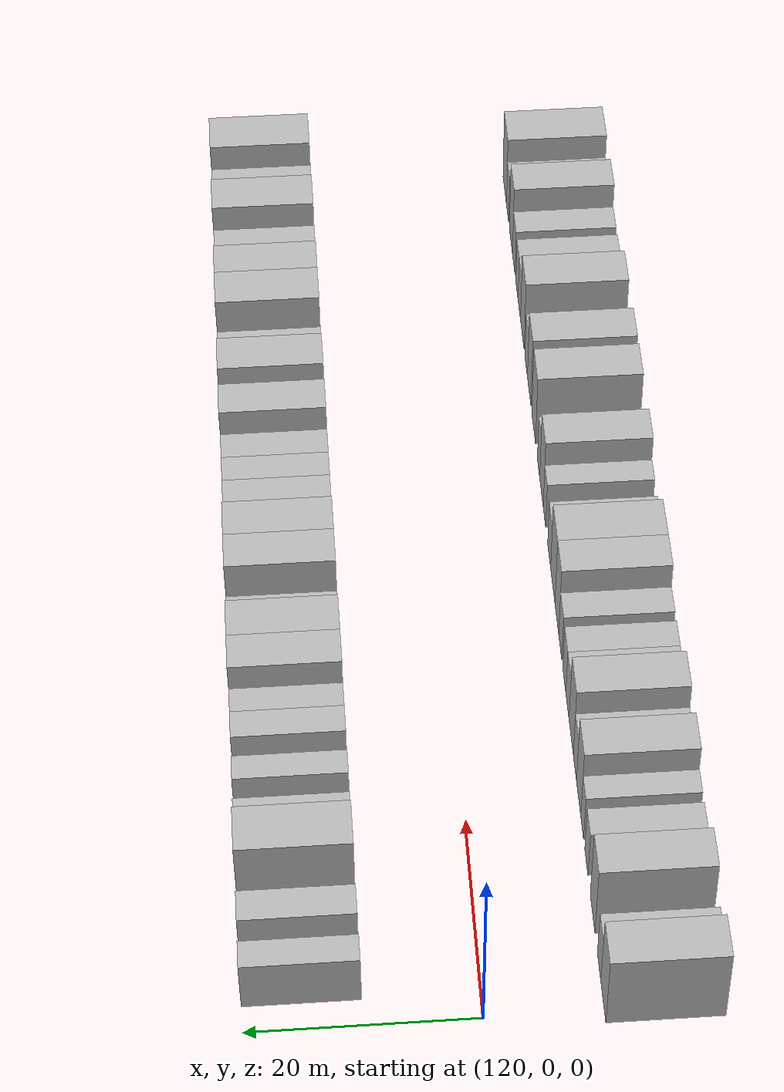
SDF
<sdf version="1.6">
 <world name="default">
  <model name="building_28">
   <static>1</static>
   <pose>123.8197 15.0000 0 0.000000 0.000000 1.570796</pose>
   <link name="link">
    <pose>0 0 3.00 0 0 0</pose>
    <collision name="collision"><geometry><box><size>10.0000 2.5622 6.0000</size></box></geometry></collision>
    <visual name="visual">
     <cast_shadows>0</cast_shadows>
     <geometry><box><size>10.0000 2.5622 6.0000</size></box></geometry>
     <material>
      <script>
       <uri>model://HANNAS_wall/materials/scripts</uri>
       <uri>model://HANNAS_wall/materials/textures</uri>
       <name>vrc/HANNAS_wall</name>
      </script>
     </material>
    </visual>
   </link>
  </model>
  <model name="building_29">
   <static>1</static>
   <pose>128.5698 15.0000 0 0.000000 0.000000 1.570796</pose>
   <link name="link">
    <pose>0 0 3.00 0 0 0</pose>
    <collision name="collision"><geometry><box><size>10.0000 2.9381 6.0000</size></box></geometry></collision>
    <visual name="visual">
     <cast_shadows>0</cast_shadows>
     <geometry><box><size>10.0000 2.9381 6.0000</size></box></geometry>
     <material>
      <script>
       <uri>model://HANNAS_wall/materials/scripts</uri>
       <uri>model://HANNAS_wall/materials/textures</uri>
       <name>vrc/HANNAS_wall</name>
      </script>
     </material>
    </visual>
   </link>
  </model>
  <model name="building_30">
   <static>1</static>
   <pose>134.2513 15.0000 0 0.000000 0.000000 1.570796</pose>
   <link name="link">
    <pose>0 0 4.50 0 0 0</pose>
    <collision name="collision"><geometry><box><size>10.0000 4.4249 9.0000</size></box></geometry></collision>
    <visual name="visual">
     <cast_shadows>0</cast_shadows>
     <geometry><box><size>10.0000 4.4249 9.0000</size></box></geometry>
     <material>
      <script>
       <uri>model://HANNAS_wall/materials/scripts</uri>
       <uri>model://HANNAS_wall/materials/textures</uri>
       <name>vrc/HANNAS_wall</name>
      </script>
     </material>
    </visual>
   </link>
  </model>
  <model name="building_31">
   <static>1</static>
   <pose>137.9628 15.0000 0 0.000000 0.000000 1.570796</pose>
   <link name="link">
    <pose>0 0 3.00 0 0 0</pose>
    <collision name="collision"><geometry><box><size>10.0000 2.9982 6.0000</size></box></geometry></collision>
    <visual name="visual">
     <cast_shadows>0</cast_shadows>
     <geometry><box><size>10.0000 2.9982 6.0000</size></box></geometry>
     <material>
      <script>
       <uri>model://HANNAS_wall/materials/scripts</uri>
       <uri>model://HANNAS_wall/materials/textures</uri>
       <name>vrc/HANNAS_wall</name>
      </script>
     </material>
    </visual>
   </link>
  </model>
  <model name="building_32">
   <static>1</static>
   <pose>142.6912 15.0000 0 0.000000 0.000000 1.570796</pose>
   <link name="link">
    <pose>0 0 3.00 0 0 0</pose>
    <collision name="collision"><geometry><box><size>10.0000 2.4584 6.0000</size></box></geometry></collision>
    <visual name="visual">
     <cast_shadows>0</cast_shadows>
     <geometry><box><size>10.0000 2.4584 6.0000</size></box></geometry>
     <material>
      <script>
       <uri>model://HANNAS_wall/materials/scripts</uri>
       <uri>model://HANNAS_wall/materials/textures</uri>
       <name>vrc/HANNAS_wall</name>
      </script>
     </material>
    </visual>
   </link>
  </model>
  <model name="building_33">
   <static>1</static>
   <pose>147.3103 15.0000 0 0.000000 0.000000 1.570796</pose>
   <link name="link">
    <pose>0 0 3.00 0 0 0</pose>
    <collision name="collision"><geometry><box><size>10.0000 2.7798 6.0000</size></box></geometry></collision>
    <visual name="visual">
     <cast_shadows>0</cast_shadows>
     <geometry><box><size>10.0000 2.7798 6.0000</size></box></geometry>
     <material>
      <script>
       <uri>model://HANNAS_wall/materials/scripts</uri>
       <uri>model://HANNAS_wall/materials/textures</uri>
       <name>vrc/HANNAS_wall</name>
      </script>
     </material>
    </visual>
   </link>
  </model>
  <model name="building_34">
   <static>1</static>
   <pose>149.9504 15.0000 0 0.000000 0.000000 1.570796</pose>
   <link name="link">
    <pose>0 0 3.00 0 0 0</pose>
    <collision name="collision"><geometry><box><size>10.0000 2.5005 6.0000</size></box></geometry></collision>
    <visual name="visual">
     <cast_shadows>0</cast_shadows>
     <geometry><box><size>10.0000 2.5005 6.0000</size></box></geometry>
     <material>
      <script>
       <uri>model://HANNAS_wall/materials/scripts</uri>
       <uri>model://HANNAS_wall/materials/textures</uri>
       <name>vrc/HANNAS_wall</name>
      </script>
     </material>
    </visual>
   </link>
  </model>
  <model name="building_35">
   <static>1</static>
   <pose>153.0064 15.0000 0 0.000000 0.000000 1.570796</pose>
   <link name="link">
    <pose>0 0 4.50 0 0 0</pose>
    <collision name="collision"><geometry><box><size>10.0000 3.6116 9.0000</size></box></geometry></collision>
    <visual name="visual">
     <cast_shadows>0</cast_shadows>
     <geometry><box><size>10.0000 3.6116 9.0000</size></box></geometry>
     <material>
      <script>
       <uri>model://HANNAS_wall/materials/scripts</uri>
       <uri>model://HANNAS_wall/materials/textures</uri>
       <name>vrc/HANNAS_wall</name>
      </script>
     </material>
    </visual>
   </link>
  </model>
  <model name="building_36">
   <static>1</static>
   <pose>156.7667 15.0000 0 0.000000 0.000000 1.570796</pose>
   <link name="link">
    <pose>0 0 4.50 0 0 0</pose>
    <collision name="collision"><geometry><box><size>10.0000 3.9090 9.0000</size></box></geometry></collision>
    <visual name="visual">
     <cast_shadows>0</cast_shadows>
     <geometry><box><size>10.0000 3.9090 9.0000</size></box></geometry>
     <material>
      <script>
       <uri>model://HANNAS_wall/materials/scripts</uri>
       <uri>model://HANNAS_wall/materials/textures</uri>
       <name>vrc/HANNAS_wall</name>
      </script>
     </material>
    </visual>
   </link>
  </model>
  <model name="building_37">
   <static>1</static>
   <pose>160.1663 15.0000 0 0.000000 0.000000 1.570796</pose>
   <link name="link">
    <pose>0 0 3.00 0 0 0</pose>
    <collision name="collision"><geometry><box><size>10.0000 2.8902 6.0000</size></box></geometry></collision>
    <visual name="visual">
     <cast_shadows>0</cast_shadows>
     <geometry><box><size>10.0000 2.8902 6.0000</size></box></geometry>
     <material>
      <script>
       <uri>model://HANNAS_wall/materials/scripts</uri>
       <uri>model://HANNAS_wall/materials/textures</uri>
       <name>vrc/HANNAS_wall</name>
      </script>
     </material>
    </visual>
   </link>
  </model>
  <model name="building_38">
   <static>1</static>
   <pose>164.5105 15.0000 0 0.000000 0.000000 1.570796</pose>
   <link name="link">
    <pose>0 0 4.50 0 0 0</pose>
    <collision name="collision"><geometry><box><size>10.0000 3.7983 9.0000</size></box></geometry></collision>
    <visual name="visual">
     <cast_shadows>0</cast_shadows>
     <geometry><box><size>10.0000 3.7983 9.0000</size></box></geometry>
     <material>
      <script>
       <uri>model://HANNAS_wall/materials/scripts</uri>
       <uri>model://HANNAS_wall/materials/textures</uri>
       <name>vrc/HANNAS_wall</name>
      </script>
     </material>
    </visual>
   </link>
  </model>
  <model name="building_39">
   <static>1</static>
   <pose>168.3373 15.0000 0 0.000000 0.000000 1.570796</pose>
   <link name="link">
    <pose>0 0 4.50 0 0 0</pose>
    <collision name="collision"><geometry><box><size>10.0000 3.8554 9.0000</size></box></geometry></collision>
    <visual name="visual">
     <cast_shadows>0</cast_shadows>
     <geometry><box><size>10.0000 3.8554 9.0000</size></box></geometry>
     <material>
      <script>
       <uri>model://HANNAS_wall/materials/scripts</uri>
       <uri>model://HANNAS_wall/materials/textures</uri>
       <name>vrc/HANNAS_wall</name>
      </script>
     </material>
    </visual>
   </link>
  </model>
  <model name="building_40">
   <static>1</static>
   <pose>171.5442 15.0000 0 0.000000 0.000000 1.570796</pose>
   <link name="link">
    <pose>0 0 3.00 0 0 0</pose>
    <collision name="collision"><geometry><box><size>10.0000 2.5584 6.0000</size></box></geometry></collision>
    <visual name="visual">
     <cast_shadows>0</cast_shadows>
     <geometry><box><size>10.0000 2.5584 6.0000</size></box></geometry>
     <material>
      <script>
       <uri>model://HANNAS_wall/materials/scripts</uri>
       <uri>model://HANNAS_wall/materials/textures</uri>
       <name>vrc/HANNAS_wall</name>
      </script>
     </material>
    </visual>
   </link>
  </model>
  <model name="building_41">
   <static>1</static>
   <pose>174.1778 15.0000 0 0.000000 0.000000 1.570796</pose>
   <link name="link">
    <pose>0 0 3.00 0 0 0</pose>
    <collision name="collision"><geometry><box><size>10.0000 2.7087 6.0000</size></box></geometry></collision>
    <visual name="visual">
     <cast_shadows>0</cast_shadows>
     <geometry><box><size>10.0000 2.7087 6.0000</size></box></geometry>
     <material>
      <script>
       <uri>model://HANNAS_wall/materials/scripts</uri>
       <uri>model://HANNAS_wall/materials/textures</uri>
       <name>vrc/HANNAS_wall</name>
      </script>
     </material>
    </visual>
   </link>
  </model>
  <model name="building_42">
   <static>1</static>
   <pose>176.9479 15.0000 0 0.000000 0.000000 1.570796</pose>
   <link name="link">
    <pose>0 0 3.00 0 0 0</pose>
    <collision name="collision"><geometry><box><size>10.0000 2.8315 6.0000</size></box></geometry></collision>
    <visual name="visual">
     <cast_shadows>0</cast_shadows>
     <geometry><box><size>10.0000 2.8315 6.0000</size></box></geometry>
     <material>
      <script>
       <uri>model://HANNAS_wall/materials/scripts</uri>
       <uri>model://HANNAS_wall/materials/textures</uri>
       <name>vrc/HANNAS_wall</name>
      </script>
     </material>
    </visual>
   </link>
  </model>
  <model name="building_43">
   <static>1</static>
   <pose>179.8066 15.0000 0 0.000000 0.000000 1.570796</pose>
   <link name="link">
    <pose>0 0 3.00 0 0 0</pose>
    <collision name="collision"><geometry><box><size>10.0000 2.8860 6.0000</size></box></geometry></collision>
    <visual name="visual">
     <cast_shadows>0</cast_shadows>
     <geometry><box><size>10.0000 2.8860 6.0000</size></box></geometry>
     <material>
      <script>
       <uri>model://HANNAS_wall/materials/scripts</uri>
       <uri>model://HANNAS_wall/materials/textures</uri>
       <name>vrc/HANNAS_wall</name>
      </script>
     </material>
    </visual>
   </link>
  </model>
  <model name="building_44">
   <static>1</static>
   <pose>183.0724 15.0000 0 0.000000 0.000000 1.570796</pose>
   <link name="link">
    <pose>0 0 4.50 0 0 0</pose>
    <collision name="collision"><geometry><box><size>10.0000 3.6456 9.0000</size></box></geometry></collision>
    <visual name="visual">
     <cast_shadows>0</cast_shadows>
     <geometry><box><size>10.0000 3.6456 9.0000</size></box></geometry>
     <material>
      <script>
       <uri>model://HANNAS_wall/materials/scripts</uri>
       <uri>model://HANNAS_wall/materials/textures</uri>
       <name>vrc/HANNAS_wall</name>
      </script>
     </material>
    </visual>
   </link>
  </model>
  <model name="building_45">
   <static>1</static>
   <pose>188.8882 15.0000 0 0.000000 0.000000 1.570796</pose>
   <link name="link">
    <pose>0 0 4.50 0 0 0</pose>
    <collision name="collision"><geometry><box><size>10.0000 3.9860 9.0000</size></box></geometry></collision>
    <visual name="visual">
     <cast_shadows>0</cast_shadows>
     <geometry><box><size>10.0000 3.9860 9.0000</size></box></geometry>
     <material>
      <script>
       <uri>model://HANNAS_wall/materials/scripts</uri>
       <uri>model://HANNAS_wall/materials/textures</uri>
       <name>vrc/HANNAS_wall</name>
      </script>
     </material>
    </visual>
   </link>
  </model>
  <model name="building_46">
   <static>1</static>
   <pose>193.2553 15.0000 0 0.000000 0.000000 1.570796</pose>
   <link name="link">
    <pose>0 0 3.00 0 0 0</pose>
    <collision name="collision"><geometry><box><size>10.0000 2.7483 6.0000</size></box></geometry></collision>
    <visual name="visual">
     <cast_shadows>0</cast_shadows>
     <geometry><box><size>10.0000 2.7483 6.0000</size></box></geometry>
     <material>
      <script>
       <uri>model://HANNAS_wall/materials/scripts</uri>
       <uri>model://HANNAS_wall/materials/textures</uri>
       <name>vrc/HANNAS_wall</name>
      </script>
     </material>
    </visual>
   </link>
  </model>
  <model name="building_47">
   <static>1</static>
   <pose>197.7018 15.0000 0 0.000000 0.000000 1.570796</pose>
   <link name="link">
    <pose>0 0 4.50 0 0 0</pose>
    <collision name="collision"><geometry><box><size>10.0000 4.1447 9.0000</size></box></geometry></collision>
    <visual name="visual">
     <cast_shadows>0</cast_shadows>
     <geometry><box><size>10.0000 4.1447 9.0000</size></box></geometry>
     <material>
      <script>
       <uri>model://HANNAS_wall/materials/scripts</uri>
       <uri>model://HANNAS_wall/materials/textures</uri>
       <name>vrc/HANNAS_wall</name>
      </script>
     </material>
    </visual>
   </link>
  </model>
  <model name="building_48">
   <static>1</static>
   <pose>201.6112 15.0000 0 0.000000 0.000000 1.570796</pose>
   <link name="link">
    <pose>0 0 4.50 0 0 0</pose>
    <collision name="collision"><geometry><box><size>10.0000 3.6740 9.0000</size></box></geometry></collision>
    <visual name="visual">
     <cast_shadows>0</cast_shadows>
     <geometry><box><size>10.0000 3.6740 9.0000</size></box></geometry>
     <material>
      <script>
       <uri>model://HANNAS_wall/materials/scripts</uri>
       <uri>model://HANNAS_wall/materials/textures</uri>
       <name>vrc/HANNAS_wall</name>
      </script>
     </material>
    </visual>
   </link>
  </model>
  <model name="building_49">
   <static>1</static>
   <pose>204.8056 15.0000 0 0.000000 0.000000 1.570796</pose>
   <link name="link">
    <pose>0 0 3.00 0 0 0</pose>
    <collision name="collision"><geometry><box><size>10.0000 2.7148 6.0000</size></box></geometry></collision>
    <visual name="visual">
     <cast_shadows>0</cast_shadows>
     <geometry><box><size>10.0000 2.7148 6.0000</size></box></geometry>
     <material>
      <script>
       <uri>model://HANNAS_wall/materials/scripts</uri>
       <uri>model://HANNAS_wall/materials/textures</uri>
       <name>vrc/HANNAS_wall</name>
      </script>
     </material>
    </visual>
   </link>
  </model>
  <model name="building_50">
   <static>1</static>
   <pose>207.4383 15.0000 0 0.000000 0.000000 1.570796</pose>
   <link name="link">
    <pose>0 0 3.00 0 0 0</pose>
    <collision name="collision"><geometry><box><size>10.0000 2.5505 6.0000</size></box></geometry></collision>
    <visual name="visual">
     <cast_shadows>0</cast_shadows>
     <geometry><box><size>10.0000 2.5505 6.0000</size></box></geometry>
     <material>
      <script>
       <uri>model://HANNAS_wall/materials/scripts</uri>
       <uri>model://HANNAS_wall/materials/textures</uri>
       <name>vrc/HANNAS_wall</name>
      </script>
     </material>
    </visual>
   </link>
  </model>
  <model name="building_51">
   <static>1</static>
   <pose>210.7949 15.0000 0 0.000000 0.000000 1.570796</pose>
   <link name="link">
    <pose>0 0 4.50 0 0 0</pose>
    <collision name="collision"><geometry><box><size>10.0000 4.1627 9.0000</size></box></geometry></collision>
    <visual name="visual">
     <cast_shadows>0</cast_shadows>
     <geometry><box><size>10.0000 4.1627 9.0000</size></box></geometry>
     <material>
      <script>
       <uri>model://HANNAS_wall/materials/scripts</uri>
       <uri>model://HANNAS_wall/materials/textures</uri>
       <name>vrc/HANNAS_wall</name>
      </script>
     </material>
    </visual>
   </link>
  </model>
  <model name="building_52">
   <static>1</static>
   <pose>216.1928 15.0000 0 0.000000 0.000000 1.570796</pose>
   <link name="link">
    <pose>0 0 3.00 0 0 0</pose>
    <collision name="collision"><geometry><box><size>10.0000 2.6331 6.0000</size></box></geometry></collision>
    <visual name="visual">
     <cast_shadows>0</cast_shadows>
     <geometry><box><size>10.0000 2.6331 6.0000</size></box></geometry>
     <material>
      <script>
       <uri>model://HANNAS_wall/materials/scripts</uri>
       <uri>model://HANNAS_wall/materials/textures</uri>
       <name>vrc/HANNAS_wall</name>
      </script>
     </material>
    </visual>
   </link>
  </model>
  <model name="building_53">
   <static>1</static>
   <pose>219.7140 15.0000 0 0.000000 0.000000 1.570796</pose>
   <link name="link">
    <pose>0 0 4.50 0 0 0</pose>
    <collision name="collision"><geometry><box><size>10.0000 4.4093 9.0000</size></box></geometry></collision>
    <visual name="visual">
     <cast_shadows>0</cast_shadows>
     <geometry><box><size>10.0000 4.4093 9.0000</size></box></geometry>
     <material>
      <script>
       <uri>model://HANNAS_wall/materials/scripts</uri>
       <uri>model://HANNAS_wall/materials/textures</uri>
       <name>vrc/HANNAS_wall</name>
      </script>
     </material>
    </visual>
   </link>
  </model>
  <model name="building_79">
   <static>1</static>
   <pose>120.9114 -15.0000 0 0.000000 0.000000 1.570796</pose>
   <link name="link">
    <pose>0 0 4.50 0 0 0</pose>
    <collision name="collision"><geometry><box><size>10.0000 4.0400 9.0000</size></box></geometry></collision>
    <visual name="visual">
     <cast_shadows>0</cast_shadows>
     <geometry><box><size>10.0000 4.0400 9.0000</size></box></geometry>
     <material>
      <script>
       <uri>model://HANNAS_wall/materials/scripts</uri>
       <uri>model://HANNAS_wall/materials/textures</uri>
       <name>vrc/HANNAS_wall</name>
      </script>
     </material>
    </visual>
   </link>
  </model>
  <model name="building_80">
   <static>1</static>
   <pose>124.2942 -15.0000 0 0.000000 0.000000 1.570796</pose>
   <link name="link">
    <pose>0 0 3.00 0 0 0</pose>
    <collision name="collision"><geometry><box><size>10.0000 2.7255 6.0000</size></box></geometry></collision>
    <visual name="visual">
     <cast_shadows>0</cast_shadows>
     <geometry><box><size>10.0000 2.7255 6.0000</size></box></geometry>
     <material>
      <script>
       <uri>model://HANNAS_wall/materials/scripts</uri>
       <uri>model://HANNAS_wall/materials/textures</uri>
       <name>vrc/HANNAS_wall</name>
      </script>
     </material>
    </visual>
   </link>
  </model>
  <model name="building_81">
   <static>1</static>
   <pose>129.5983 -15.0000 0 0.000000 0.000000 1.570796</pose>
   <link name="link">
    <pose>0 0 4.50 0 0 0</pose>
    <collision name="collision"><geometry><box><size>10.0000 3.8826 9.0000</size></box></geometry></collision>
    <visual name="visual">
     <cast_shadows>0</cast_shadows>
     <geometry><box><size>10.0000 3.8826 9.0000</size></box></geometry>
     <material>
      <script>
       <uri>model://HANNAS_wall/materials/scripts</uri>
       <uri>model://HANNAS_wall/materials/textures</uri>
       <name>vrc/HANNAS_wall</name>
      </script>
     </material>
    </visual>
   </link>
  </model>
  <model name="building_82">
   <static>1</static>
   <pose>134.8965 -15.0000 0 0.000000 0.000000 1.570796</pose>
   <link name="link">
    <pose>0 0 3.00 0 0 0</pose>
    <collision name="collision"><geometry><box><size>10.0000 2.7139 6.0000</size></box></geometry></collision>
    <visual name="visual">
     <cast_shadows>0</cast_shadows>
     <geometry><box><size>10.0000 2.7139 6.0000</size></box></geometry>
     <material>
      <script>
       <uri>model://HANNAS_wall/materials/scripts</uri>
       <uri>model://HANNAS_wall/materials/textures</uri>
       <name>vrc/HANNAS_wall</name>
      </script>
     </material>
    </visual>
   </link>
  </model>
  <model name="building_83">
   <static>1</static>
   <pose>138.4679 -15.0000 0 0.000000 0.000000 1.570796</pose>
   <link name="link">
    <pose>0 0 3.00 0 0 0</pose>
    <collision name="collision"><geometry><box><size>10.0000 2.4290 6.0000</size></box></geometry></collision>
    <visual name="visual">
     <cast_shadows>0</cast_shadows>
     <geometry><box><size>10.0000 2.4290 6.0000</size></box></geometry>
     <material>
      <script>
       <uri>model://HANNAS_wall/materials/scripts</uri>
       <uri>model://HANNAS_wall/materials/textures</uri>
       <name>vrc/HANNAS_wall</name>
      </script>
     </material>
    </visual>
   </link>
  </model>
  <model name="building_84">
   <static>1</static>
   <pose>141.5851 -15.0000 0 0.000000 0.000000 1.570796</pose>
   <link name="link">
    <pose>0 0 4.50 0 0 0</pose>
    <collision name="collision"><geometry><box><size>10.0000 3.8054 9.0000</size></box></geometry></collision>
    <visual name="visual">
     <cast_shadows>0</cast_shadows>
     <geometry><box><size>10.0000 3.8054 9.0000</size></box></geometry>
     <material>
      <script>
       <uri>model://HANNAS_wall/materials/scripts</uri>
       <uri>model://HANNAS_wall/materials/textures</uri>
       <name>vrc/HANNAS_wall</name>
      </script>
     </material>
    </visual>
   </link>
  </model>
  <model name="building_85">
   <static>1</static>
   <pose>144.9153 -15.0000 0 0.000000 0.000000 1.570796</pose>
   <link name="link">
    <pose>0 0 3.00 0 0 0</pose>
    <collision name="collision"><geometry><box><size>10.0000 2.8550 6.0000</size></box></geometry></collision>
    <visual name="visual">
     <cast_shadows>0</cast_shadows>
     <geometry><box><size>10.0000 2.8550 6.0000</size></box></geometry>
     <material>
      <script>
       <uri>model://HANNAS_wall/materials/scripts</uri>
       <uri>model://HANNAS_wall/materials/textures</uri>
       <name>vrc/HANNAS_wall</name>
      </script>
     </material>
    </visual>
   </link>
  </model>
  <model name="building_86">
   <static>1</static>
   <pose>148.3011 -15.0000 0 0.000000 0.000000 1.570796</pose>
   <link name="link">
    <pose>0 0 4.50 0 0 0</pose>
    <collision name="collision"><geometry><box><size>10.0000 3.9166 9.0000</size></box></geometry></collision>
    <visual name="visual">
     <cast_shadows>0</cast_shadows>
     <geometry><box><size>10.0000 3.9166 9.0000</size></box></geometry>
     <material>
      <script>
       <uri>model://HANNAS_wall/materials/scripts</uri>
       <uri>model://HANNAS_wall/materials/textures</uri>
       <name>vrc/HANNAS_wall</name>
      </script>
     </material>
    </visual>
   </link>
  </model>
  <model name="building_87">
   <static>1</static>
   <pose>151.7233 -15.0000 0 0.000000 0.000000 1.570796</pose>
   <link name="link">
    <pose>0 0 3.00 0 0 0</pose>
    <collision name="collision"><geometry><box><size>10.0000 2.9280 6.0000</size></box></geometry></collision>
    <visual name="visual">
     <cast_shadows>0</cast_shadows>
     <geometry><box><size>10.0000 2.9280 6.0000</size></box></geometry>
     <material>
      <script>
       <uri>model://HANNAS_wall/materials/scripts</uri>
       <uri>model://HANNAS_wall/materials/textures</uri>
       <name>vrc/HANNAS_wall</name>
      </script>
     </material>
    </visual>
   </link>
  </model>
  <model name="building_88">
   <static>1</static>
   <pose>154.6145 -15.0000 0 0.000000 0.000000 1.570796</pose>
   <link name="link">
    <pose>0 0 3.00 0 0 0</pose>
    <collision name="collision"><geometry><box><size>10.0000 2.8543 6.0000</size></box></geometry></collision>
    <visual name="visual">
     <cast_shadows>0</cast_shadows>
     <geometry><box><size>10.0000 2.8543 6.0000</size></box></geometry>
     <material>
      <script>
       <uri>model://HANNAS_wall/materials/scripts</uri>
       <uri>model://HANNAS_wall/materials/textures</uri>
       <name>vrc/HANNAS_wall</name>
      </script>
     </material>
    </visual>
   </link>
  </model>
  <model name="building_89">
   <static>1</static>
   <pose>158.4905 -15.0000 0 0.000000 0.000000 1.570796</pose>
   <link name="link">
    <pose>0 0 3.00 0 0 0</pose>
    <collision name="collision"><geometry><box><size>10.0000 2.8977 6.0000</size></box></geometry></collision>
    <visual name="visual">
     <cast_shadows>0</cast_shadows>
     <geometry><box><size>10.0000 2.8977 6.0000</size></box></geometry>
     <material>
      <script>
       <uri>model://HANNAS_wall/materials/scripts</uri>
       <uri>model://HANNAS_wall/materials/textures</uri>
       <name>vrc/HANNAS_wall</name>
      </script>
     </material>
    </visual>
   </link>
  </model>
  <model name="building_90">
   <static>1</static>
   <pose>161.7598 -15.0000 0 0.000000 0.000000 1.570796</pose>
   <link name="link">
    <pose>0 0 4.50 0 0 0</pose>
    <collision name="collision"><geometry><box><size>10.0000 3.6408 9.0000</size></box></geometry></collision>
    <visual name="visual">
     <cast_shadows>0</cast_shadows>
     <geometry><box><size>10.0000 3.6408 9.0000</size></box></geometry>
     <material>
      <script>
       <uri>model://HANNAS_wall/materials/scripts</uri>
       <uri>model://HANNAS_wall/materials/textures</uri>
       <name>vrc/HANNAS_wall</name>
      </script>
     </material>
    </visual>
   </link>
  </model>
  <model name="building_91">
   <static>1</static>
   <pose>165.6843 -15.0000 0 0.000000 0.000000 1.570796</pose>
   <link name="link">
    <pose>0 0 4.50 0 0 0</pose>
    <collision name="collision"><geometry><box><size>10.0000 4.2081 9.0000</size></box></geometry></collision>
    <visual name="visual">
     <cast_shadows>0</cast_shadows>
     <geometry><box><size>10.0000 4.2081 9.0000</size></box></geometry>
     <material>
      <script>
       <uri>model://HANNAS_wall/materials/scripts</uri>
       <uri>model://HANNAS_wall/materials/textures</uri>
       <name>vrc/HANNAS_wall</name>
      </script>
     </material>
    </visual>
   </link>
  </model>
  <model name="building_92">
   <static>1</static>
   <pose>169.2853 -15.0000 0 0.000000 0.000000 1.570796</pose>
   <link name="link">
    <pose>0 0 3.00 0 0 0</pose>
    <collision name="collision"><geometry><box><size>10.0000 2.9939 6.0000</size></box></geometry></collision>
    <visual name="visual">
     <cast_shadows>0</cast_shadows>
     <geometry><box><size>10.0000 2.9939 6.0000</size></box></geometry>
     <material>
      <script>
       <uri>model://HANNAS_wall/materials/scripts</uri>
       <uri>model://HANNAS_wall/materials/textures</uri>
       <name>vrc/HANNAS_wall</name>
      </script>
     </material>
    </visual>
   </link>
  </model>
  <model name="building_93">
   <static>1</static>
   <pose>174.0330 -15.0000 0 0.000000 0.000000 1.570796</pose>
   <link name="link">
    <pose>0 0 3.00 0 0 0</pose>
    <collision name="collision"><geometry><box><size>10.0000 2.5015 6.0000</size></box></geometry></collision>
    <visual name="visual">
     <cast_shadows>0</cast_shadows>
     <geometry><box><size>10.0000 2.5015 6.0000</size></box></geometry>
     <material>
      <script>
       <uri>model://HANNAS_wall/materials/scripts</uri>
       <uri>model://HANNAS_wall/materials/textures</uri>
       <name>vrc/HANNAS_wall</name>
      </script>
     </material>
    </visual>
   </link>
  </model>
  <model name="building_94">
   <static>1</static>
   <pose>177.1217 -15.0000 0 0.000000 0.000000 1.570796</pose>
   <link name="link">
    <pose>0 0 4.50 0 0 0</pose>
    <collision name="collision"><geometry><box><size>10.0000 3.6760 9.0000</size></box></geometry></collision>
    <visual name="visual">
     <cast_shadows>0</cast_shadows>
     <geometry><box><size>10.0000 3.6760 9.0000</size></box></geometry>
     <material>
      <script>
       <uri>model://HANNAS_wall/materials/scripts</uri>
       <uri>model://HANNAS_wall/materials/textures</uri>
       <name>vrc/HANNAS_wall</name>
      </script>
     </material>
    </visual>
   </link>
  </model>
  <model name="building_95">
   <static>1</static>
   <pose>180.1760 -15.0000 0 0.000000 0.000000 1.570796</pose>
   <link name="link">
    <pose>0 0 3.00 0 0 0</pose>
    <collision name="collision"><geometry><box><size>10.0000 2.4325 6.0000</size></box></geometry></collision>
    <visual name="visual">
     <cast_shadows>0</cast_shadows>
     <geometry><box><size>10.0000 2.4325 6.0000</size></box></geometry>
     <material>
      <script>
       <uri>model://HANNAS_wall/materials/scripts</uri>
       <uri>model://HANNAS_wall/materials/textures</uri>
       <name>vrc/HANNAS_wall</name>
      </script>
     </material>
    </visual>
   </link>
  </model>
  <model name="building_96">
   <static>1</static>
   <pose>185.3817 -15.0000 0 0.000000 0.000000 1.570796</pose>
   <link name="link">
    <pose>0 0 4.50 0 0 0</pose>
    <collision name="collision"><geometry><box><size>10.0000 3.9789 9.0000</size></box></geometry></collision>
    <visual name="visual">
     <cast_shadows>0</cast_shadows>
     <geometry><box><size>10.0000 3.9789 9.0000</size></box></geometry>
     <material>
      <script>
       <uri>model://HANNAS_wall/materials/scripts</uri>
       <uri>model://HANNAS_wall/materials/textures</uri>
       <name>vrc/HANNAS_wall</name>
      </script>
     </material>
    </visual>
   </link>
  </model>
  <model name="building_97">
   <static>1</static>
   <pose>190.2618 -15.0000 0 0.000000 0.000000 1.570796</pose>
   <link name="link">
    <pose>0 0 4.50 0 0 0</pose>
    <collision name="collision"><geometry><box><size>10.0000 3.7813 9.0000</size></box></geometry></collision>
    <visual name="visual">
     <cast_shadows>0</cast_shadows>
     <geometry><box><size>10.0000 3.7813 9.0000</size></box></geometry>
     <material>
      <script>
       <uri>model://HANNAS_wall/materials/scripts</uri>
       <uri>model://HANNAS_wall/materials/textures</uri>
       <name>vrc/HANNAS_wall</name>
      </script>
     </material>
    </visual>
   </link>
  </model>
  <model name="building_98">
   <static>1</static>
   <pose>193.5241 -15.0000 0 0.000000 0.000000 1.570796</pose>
   <link name="link">
    <pose>0 0 3.00 0 0 0</pose>
    <collision name="collision"><geometry><box><size>10.0000 2.7432 6.0000</size></box></geometry></collision>
    <visual name="visual">
     <cast_shadows>0</cast_shadows>
     <geometry><box><size>10.0000 2.7432 6.0000</size></box></geometry>
     <material>
      <script>
       <uri>model://HANNAS_wall/materials/scripts</uri>
       <uri>model://HANNAS_wall/materials/textures</uri>
       <name>vrc/HANNAS_wall</name>
      </script>
     </material>
    </visual>
   </link>
  </model>
  <model name="building_99">
   <static>1</static>
   <pose>197.9238 -15.0000 0 0.000000 0.000000 1.570796</pose>
   <link name="link">
    <pose>0 0 4.50 0 0 0</pose>
    <collision name="collision"><geometry><box><size>10.0000 4.0564 9.0000</size></box></geometry></collision>
    <visual name="visual">
     <cast_shadows>0</cast_shadows>
     <geometry><box><size>10.0000 4.0564 9.0000</size></box></geometry>
     <material>
      <script>
       <uri>model://HANNAS_wall/materials/scripts</uri>
       <uri>model://HANNAS_wall/materials/textures</uri>
       <name>vrc/HANNAS_wall</name>
      </script>
     </material>
    </visual>
   </link>
  </model>
  <model name="building_100">
   <static>1</static>
   <pose>201.3759 -15.0000 0 0.000000 0.000000 1.570796</pose>
   <link name="link">
    <pose>0 0 3.00 0 0 0</pose>
    <collision name="collision"><geometry><box><size>10.0000 2.8478 6.0000</size></box></geometry></collision>
    <visual name="visual">
     <cast_shadows>0</cast_shadows>
     <geometry><box><size>10.0000 2.8478 6.0000</size></box></geometry>
     <material>
      <script>
       <uri>model://HANNAS_wall/materials/scripts</uri>
       <uri>model://HANNAS_wall/materials/textures</uri>
       <name>vrc/HANNAS_wall</name>
      </script>
     </material>
    </visual>
   </link>
  </model>
  <model name="building_101">
   <static>1</static>
   <pose>204.0463 -15.0000 0 0.000000 0.000000 1.570796</pose>
   <link name="link">
    <pose>0 0 3.00 0 0 0</pose>
    <collision name="collision"><geometry><box><size>10.0000 2.4931 6.0000</size></box></geometry></collision>
    <visual name="visual">
     <cast_shadows>0</cast_shadows>
     <geometry><box><size>10.0000 2.4931 6.0000</size></box></geometry>
     <material>
      <script>
       <uri>model://HANNAS_wall/materials/scripts</uri>
       <uri>model://HANNAS_wall/materials/textures</uri>
       <name>vrc/HANNAS_wall</name>
      </script>
     </material>
    </visual>
   </link>
  </model>
  <model name="building_102">
   <static>1</static>
   <pose>207.7692 -15.0000 0 0.000000 0.000000 1.570796</pose>
   <link name="link">
    <pose>0 0 3.00 0 0 0</pose>
    <collision name="collision"><geometry><box><size>10.0000 2.9527 6.0000</size></box></geometry></collision>
    <visual name="visual">
     <cast_shadows>0</cast_shadows>
     <geometry><box><size>10.0000 2.9527 6.0000</size></box></geometry>
     <material>
      <script>
       <uri>model://HANNAS_wall/materials/scripts</uri>
       <uri>model://HANNAS_wall/materials/textures</uri>
       <name>vrc/HANNAS_wall</name>
      </script>
     </material>
    </visual>
   </link>
  </model>
  <model name="building_103">
   <static>1</static>
   <pose>211.1140 -15.0000 0 0.000000 0.000000 1.570796</pose>
   <link name="link">
    <pose>0 0 4.50 0 0 0</pose>
    <collision name="collision"><geometry><box><size>10.0000 3.7369 9.0000</size></box></geometry></collision>
    <visual name="visual">
     <cast_shadows>0</cast_shadows>
     <geometry><box><size>10.0000 3.7369 9.0000</size></box></geometry>
     <material>
      <script>
       <uri>model://HANNAS_wall/materials/scripts</uri>
       <uri>model://HANNAS_wall/materials/textures</uri>
       <name>vrc/HANNAS_wall</name>
      </script>
     </material>
    </visual>
   </link>
  </model>
  <model name="building_104">
   <static>1</static>
   <pose>215.2346 -15.0000 0 0.000000 0.000000 1.570796</pose>
   <link name="link">
    <pose>0 0 3.00 0 0 0</pose>
    <collision name="collision"><geometry><box><size>10.0000 2.5043 6.0000</size></box></geometry></collision>
    <visual name="visual">
     <cast_shadows>0</cast_shadows>
     <geometry><box><size>10.0000 2.5043 6.0000</size></box></geometry>
     <material>
      <script>
       <uri>model://HANNAS_wall/materials/scripts</uri>
       <uri>model://HANNAS_wall/materials/textures</uri>
       <name>vrc/HANNAS_wall</name>
      </script>
     </material>
    </visual>
   </link>
  </model>
  <model name="building_105">
   <static>1</static>
   <pose>218.6475 -15.0000 0 0.000000 0.000000 1.570796</pose>
   <link name="link">
    <pose>0 0 4.50 0 0 0</pose>
    <collision name="collision"><geometry><box><size>10.0000 4.3215 9.0000</size></box></geometry></collision>
    <visual name="visual">
     <cast_shadows>0</cast_shadows>
     <geometry><box><size>10.0000 4.3215 9.0000</size></box></geometry>
     <material>
      <script>
       <uri>model://HANNAS_wall/materials/scripts</uri>
       <uri>model://HANNAS_wall/materials/textures</uri>
       <name>vrc/HANNAS_wall</name>
      </script>
     </material>
    </visual>
   </link>
  </model>
 </world>
</sdf>
